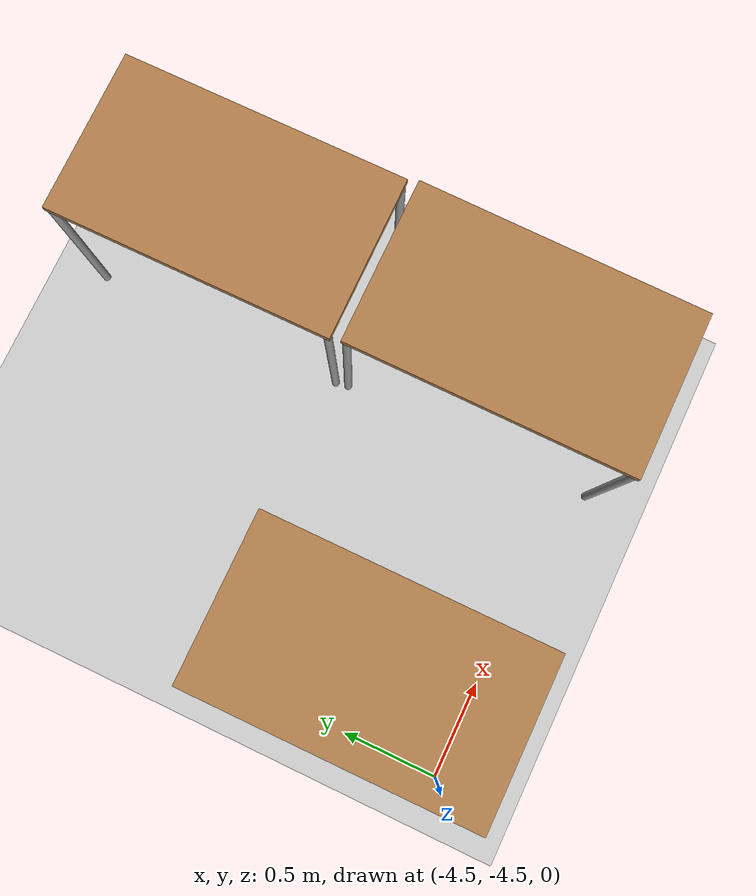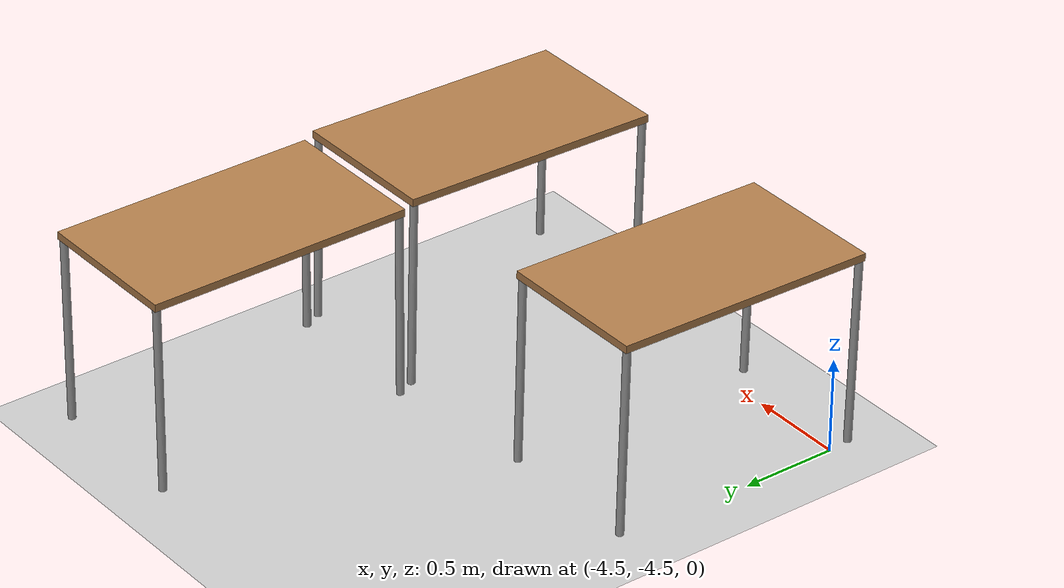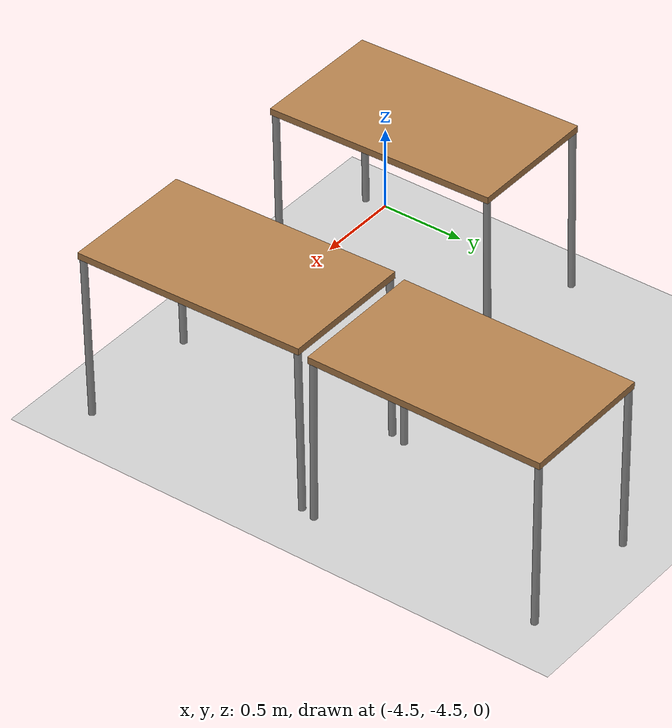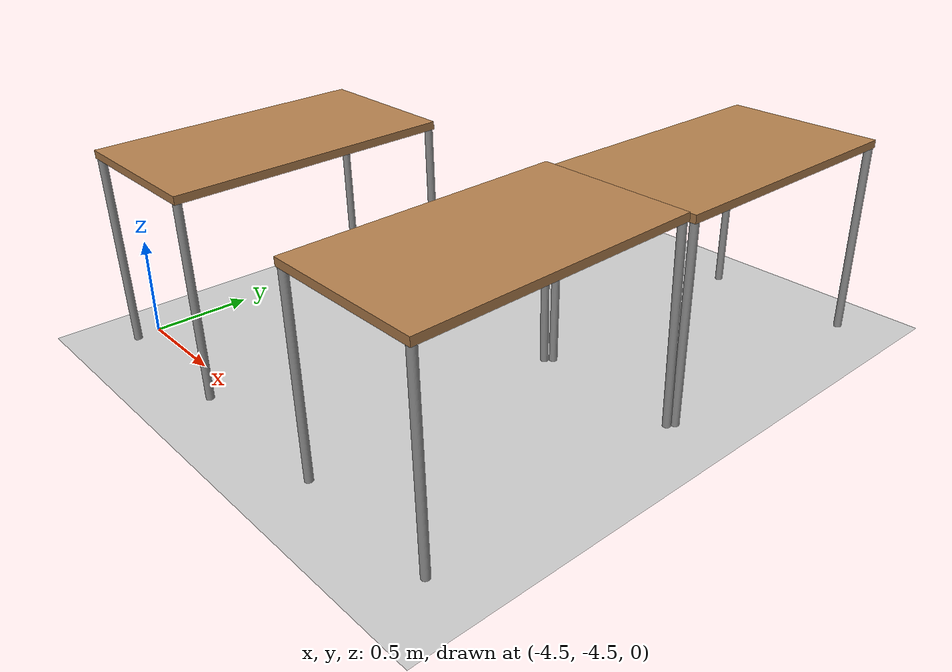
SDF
<sdf version="1.6">
 <world name="default">
  <model name="ground_plane">
   <static>1</static>
   <link name="link">
    <collision name="collision">
     <geometry><plane><normal>0 0 1</normal><size>100 100</size></plane></geometry>
     <surface><friction><ode><mu>100</mu><mu2>50</mu2></ode></friction></surface>
    </collision>
    <visual name="visual">
     <cast_shadows>0</cast_shadows>
     <geometry><plane><normal>0 0 1</normal><size>100 100</size></plane></geometry>
     <material>
      <script><uri>file://media/materials/scripts/gazebo.material</uri><name>Gazebo/Grey</name></script>
     </material>
    </visual>
   </link>
  </model>
  <model name="table_vert_0_clone_clone_clone_0">
   <link name="link">
    <pose>0 0 0 0 0 -1.56614</pose>
    <inertial>
     <inertia><ixx>1</ixx><ixy>0</ixy><ixz>0</ixz><iyy>1</iyy><iyz>0</iyz><izz>1</izz></inertia>
     <mass>1</mass>
    </inertial>
    <visual name="visual1">
     <pose>0 0 1 0 -0 0</pose>
     <geometry><box><size>1.4 0.8 0.04</size></box></geometry>
     <material>
      <script><uri>file://media/materials/scripts/gazebo.material</uri><name>Gazebo/Wood</name></script>
      <ambient>1 1 1 1</ambient>
      <diffuse>1 1 1 1</diffuse>
      <specular>0.2 0.2 0.2 1</specular>
      <emissive>0 0 0 1</emissive>
     </material>
    </visual>
    <visual name="front_left_leg">
     <pose>0.68 0.38 0.5 0 -0 0</pose>
     <geometry><cylinder><radius>0.02</radius><length>1</length></cylinder></geometry>
     <material>
      <script><uri>file://media/materials/scripts/gazebo.material</uri><name>Gazebo/Grey</name></script>
      <ambient>0.3 0.3 0.3 1</ambient>
      <diffuse>0.7 0.7 0.7 1</diffuse>
      <specular>0.01 0.01 0.01 1</specular>
      <emissive>0 0 0 1</emissive>
     </material>
    </visual>
    <visual name="front_right_leg">
     <pose>0.68 -0.38 0.5 0 -0 0</pose>
     <geometry><cylinder><radius>0.02</radius><length>1</length></cylinder></geometry>
     <material>
      <script><uri>file://media/materials/scripts/gazebo.material</uri><name>Gazebo/Grey</name></script>
      <ambient>0.3 0.3 0.3 1</ambient>
      <diffuse>0.7 0.7 0.7 1</diffuse>
      <specular>0.01 0.01 0.01 1</specular>
      <emissive>0 0 0 1</emissive>
     </material>
    </visual>
    <visual name="back_right_leg">
     <pose>-0.68 -0.38 0.5 0 -0 0</pose>
     <geometry><cylinder><radius>0.02</radius><length>1</length></cylinder></geometry>
     <material>
      <script><uri>file://media/materials/scripts/gazebo.material</uri><name>Gazebo/Grey</name></script>
      <ambient>0.3 0.3 0.3 1</ambient>
      <diffuse>0.7 0.7 0.7 1</diffuse>
      <specular>0.01 0.01 0.01 1</specular>
      <emissive>0 0 0 1</emissive>
     </material>
    </visual>
    <visual name="back_left_leg">
     <pose>-0.68 0.38 0.5 0 -0 0</pose>
     <geometry><cylinder><radius>0.02</radius><length>1</length></cylinder></geometry>
     <material>
      <script><uri>file://media/materials/scripts/gazebo.material</uri><name>Gazebo/Grey</name></script>
      <ambient>0.3 0.3 0.3 1</ambient>
      <diffuse>0.7 0.7 0.7 1</diffuse>
      <specular>0.01 0.01 0.01 1</specular>
      <emissive>0 0 0 1</emissive>
     </material>
    </visual>
    <collision name="surface">
     <pose>0 0 1 0 -0 0</pose>
     <geometry><box><size>1.5 0.8 0.03</size></box></geometry>
     <surface>
      <friction>
       <ode><mu>0.6</mu><mu2>0.6</mu2><fdir1>0 0 0</fdir1><slip1>0</slip1><slip2>0</slip2></ode>
       <torsional>
        <coefficient>1</coefficient>
        <patch_radius>0</patch_radius>
        <surface_radius>0</surface_radius>
        <use_patch_radius>1</use_patch_radius>
        <ode><slip>0</slip></ode>
       </torsional>
      </friction>
      <bounce><restitution_coefficient>0</restitution_coefficient><threshold>1e+06</threshold></bounce>
      <contact>
       <collide_without_contact>0</collide_without_contact>
       <collide_without_contact_bitmask>1</collide_without_contact_bitmask>
       <collide_bitmask>1</collide_bitmask>
       <ode>
        <soft_cfm>0</soft_cfm>
        <soft_erp>0.2</soft_erp>
        <kp>1e+13</kp>
        <kd>1</kd>
        <max_vel>0.01</max_vel>
        <min_depth>0</min_depth>
       </ode>
       <bullet>
        <split_impulse>1</split_impulse>
        <split_impulse_penetration_threshold>-0.01</split_impulse_penetration_threshold>
        <soft_cfm>0</soft_cfm>
        <soft_erp>0.2</soft_erp>
        <kp>1e+13</kp>
        <kd>1</kd>
       </bullet>
      </contact>
     </surface>
    </collision>
    <collision name="front_left_leg">
     <pose>0.68 0.38 0.5 0 -0 0</pose>
     <geometry><cylinder><radius>0.02</radius><length>1</length></cylinder></geometry>
     <surface>
      <friction>
       <ode><mu>1</mu><mu2>1</mu2><fdir1>0 0 0</fdir1><slip1>0</slip1><slip2>0</slip2></ode>
       <torsional>
        <coefficient>1</coefficient>
        <patch_radius>0</patch_radius>
        <surface_radius>0</surface_radius>
        <use_patch_radius>1</use_patch_radius>
        <ode><slip>0</slip></ode>
       </torsional>
      </friction>
      <bounce><restitution_coefficient>0</restitution_coefficient><threshold>1e+06</threshold></bounce>
      <contact>
       <collide_without_contact>0</collide_without_contact>
       <collide_without_contact_bitmask>1</collide_without_contact_bitmask>
       <collide_bitmask>1</collide_bitmask>
       <ode>
        <soft_cfm>0</soft_cfm>
        <soft_erp>0.2</soft_erp>
        <kp>1e+13</kp>
        <kd>1</kd>
        <max_vel>0.01</max_vel>
        <min_depth>0</min_depth>
       </ode>
       <bullet>
        <split_impulse>1</split_impulse>
        <split_impulse_penetration_threshold>-0.01</split_impulse_penetration_threshold>
        <soft_cfm>0</soft_cfm>
        <soft_erp>0.2</soft_erp>
        <kp>1e+13</kp>
        <kd>1</kd>
       </bullet>
      </contact>
     </surface>
    </collision>
    <collision name="front_right_leg">
     <pose>0.68 -0.38 0.5 0 -0 0</pose>
     <geometry><cylinder><radius>0.02</radius><length>1</length></cylinder></geometry>
     <surface>
      <friction>
       <ode><mu>1</mu><mu2>1</mu2><fdir1>0 0 0</fdir1><slip1>0</slip1><slip2>0</slip2></ode>
       <torsional>
        <coefficient>1</coefficient>
        <patch_radius>0</patch_radius>
        <surface_radius>0</surface_radius>
        <use_patch_radius>1</use_patch_radius>
        <ode><slip>0</slip></ode>
       </torsional>
      </friction>
      <bounce><restitution_coefficient>0</restitution_coefficient><threshold>1e+06</threshold></bounce>
      <contact>
       <collide_without_contact>0</collide_without_contact>
       <collide_without_contact_bitmask>1</collide_without_contact_bitmask>
       <collide_bitmask>1</collide_bitmask>
       <ode>
        <soft_cfm>0</soft_cfm>
        <soft_erp>0.2</soft_erp>
        <kp>1e+13</kp>
        <kd>1</kd>
        <max_vel>0.01</max_vel>
        <min_depth>0</min_depth>
       </ode>
       <bullet>
        <split_impulse>1</split_impulse>
        <split_impulse_penetration_threshold>-0.01</split_impulse_penetration_threshold>
        <soft_cfm>0</soft_cfm>
        <soft_erp>0.2</soft_erp>
        <kp>1e+13</kp>
        <kd>1</kd>
       </bullet>
      </contact>
     </surface>
    </collision>
    <collision name="back_right_leg">
     <pose>-0.68 -0.38 0.5 0 -0 0</pose>
     <geometry><cylinder><radius>0.02</radius><length>1</length></cylinder></geometry>
     <surface>
      <friction>
       <ode><mu>1</mu><mu2>1</mu2><fdir1>0 0 0</fdir1><slip1>0</slip1><slip2>0</slip2></ode>
       <torsional>
        <coefficient>1</coefficient>
        <patch_radius>0</patch_radius>
        <surface_radius>0</surface_radius>
        <use_patch_radius>1</use_patch_radius>
        <ode><slip>0</slip></ode>
       </torsional>
      </friction>
      <bounce><restitution_coefficient>0</restitution_coefficient><threshold>1e+06</threshold></bounce>
      <contact>
       <collide_without_contact>0</collide_without_contact>
       <collide_without_contact_bitmask>1</collide_without_contact_bitmask>
       <collide_bitmask>1</collide_bitmask>
       <ode>
        <soft_cfm>0</soft_cfm>
        <soft_erp>0.2</soft_erp>
        <kp>1e+13</kp>
        <kd>1</kd>
        <max_vel>0.01</max_vel>
        <min_depth>0</min_depth>
       </ode>
       <bullet>
        <split_impulse>1</split_impulse>
        <split_impulse_penetration_threshold>-0.01</split_impulse_penetration_threshold>
        <soft_cfm>0</soft_cfm>
        <soft_erp>0.2</soft_erp>
        <kp>1e+13</kp>
        <kd>1</kd>
       </bullet>
      </contact>
     </surface>
    </collision>
    <collision name="back_left_leg">
     <pose>-0.68 0.38 0.5 0 -0 0</pose>
     <geometry><cylinder><radius>0.02</radius><length>1</length></cylinder></geometry>
     <surface>
      <friction>
       <ode><mu>1</mu><mu2>1</mu2><fdir1>0 0 0</fdir1><slip1>0</slip1><slip2>0</slip2></ode>
       <torsional>
        <coefficient>1</coefficient>
        <patch_radius>0</patch_radius>
        <surface_radius>0</surface_radius>
        <use_patch_radius>1</use_patch_radius>
        <ode><slip>0</slip></ode>
       </torsional>
      </friction>
      <bounce><restitution_coefficient>0</restitution_coefficient><threshold>1e+06</threshold></bounce>
      <contact>
       <collide_without_contact>0</collide_without_contact>
       <collide_without_contact_bitmask>1</collide_without_contact_bitmask>
       <collide_bitmask>1</collide_bitmask>
       <ode>
        <soft_cfm>0</soft_cfm>
        <soft_erp>0.2</soft_erp>
        <kp>1e+13</kp>
        <kd>1</kd>
        <max_vel>0.01</max_vel>
        <min_depth>0</min_depth>
       </ode>
       <bullet>
        <split_impulse>1</split_impulse>
        <split_impulse_penetration_threshold>-0.01</split_impulse_penetration_threshold>
        <soft_cfm>0</soft_cfm>
        <soft_erp>0.2</soft_erp>
        <kp>1e+13</kp>
        <kd>1</kd>
       </bullet>
      </contact>
     </surface>
    </collision>
   </link>
   <static>0</static>
   <pose>-2.51933 -2.50991 -1e-05 1e-06 0 -0.004658</pose>
  </model>
  <model name="table_vert_0_clone_clone_clone_0_clone_0_clone">
   <link name="link">
    <pose>0 0 0 0 0 -1.56614</pose>
    <inertial>
     <inertia><ixx>1</ixx><ixy>0</ixy><ixz>0</ixz><iyy>1</iyy><iyz>0</iyz><izz>1</izz></inertia>
     <mass>1</mass>
    </inertial>
    <visual name="visual1">
     <pose>0 0 1 0 -0 0</pose>
     <geometry><box><size>1.4 0.8 0.04</size></box></geometry>
     <material>
      <script><uri>file://media/materials/scripts/gazebo.material</uri><name>Gazebo/Wood</name></script>
      <ambient>1 1 1 1</ambient>
      <diffuse>1 1 1 1</diffuse>
      <specular>0.2 0.2 0.2 1</specular>
      <emissive>0 0 0 1</emissive>
     </material>
    </visual>
    <visual name="front_left_leg">
     <pose>0.68 0.38 0.5 0 -0 0</pose>
     <geometry><cylinder><radius>0.02</radius><length>1</length></cylinder></geometry>
     <material>
      <script><uri>file://media/materials/scripts/gazebo.material</uri><name>Gazebo/Grey</name></script>
      <ambient>0.3 0.3 0.3 1</ambient>
      <diffuse>0.7 0.7 0.7 1</diffuse>
      <specular>0.01 0.01 0.01 1</specular>
      <emissive>0 0 0 1</emissive>
     </material>
    </visual>
    <visual name="front_right_leg">
     <pose>0.68 -0.38 0.5 0 -0 0</pose>
     <geometry><cylinder><radius>0.02</radius><length>1</length></cylinder></geometry>
     <material>
      <script><uri>file://media/materials/scripts/gazebo.material</uri><name>Gazebo/Grey</name></script>
      <ambient>0.3 0.3 0.3 1</ambient>
      <diffuse>0.7 0.7 0.7 1</diffuse>
      <specular>0.01 0.01 0.01 1</specular>
      <emissive>0 0 0 1</emissive>
     </material>
    </visual>
    <visual name="back_right_leg">
     <pose>-0.68 -0.38 0.5 0 -0 0</pose>
     <geometry><cylinder><radius>0.02</radius><length>1</length></cylinder></geometry>
     <material>
      <script><uri>file://media/materials/scripts/gazebo.material</uri><name>Gazebo/Grey</name></script>
      <ambient>0.3 0.3 0.3 1</ambient>
      <diffuse>0.7 0.7 0.7 1</diffuse>
      <specular>0.01 0.01 0.01 1</specular>
      <emissive>0 0 0 1</emissive>
     </material>
    </visual>
    <visual name="back_left_leg">
     <pose>-0.68 0.38 0.5 0 -0 0</pose>
     <geometry><cylinder><radius>0.02</radius><length>1</length></cylinder></geometry>
     <material>
      <script><uri>file://media/materials/scripts/gazebo.material</uri><name>Gazebo/Grey</name></script>
      <ambient>0.3 0.3 0.3 1</ambient>
      <diffuse>0.7 0.7 0.7 1</diffuse>
      <specular>0.01 0.01 0.01 1</specular>
      <emissive>0 0 0 1</emissive>
     </material>
    </visual>
    <collision name="surface">
     <pose>0 0 1 0 -0 0</pose>
     <geometry><box><size>1.5 0.8 0.03</size></box></geometry>
     <surface>
      <friction>
       <ode><mu>0.6</mu><mu2>0.6</mu2><fdir1>0 0 0</fdir1><slip1>0</slip1><slip2>0</slip2></ode>
       <torsional>
        <coefficient>1</coefficient>
        <patch_radius>0</patch_radius>
        <surface_radius>0</surface_radius>
        <use_patch_radius>1</use_patch_radius>
        <ode><slip>0</slip></ode>
       </torsional>
      </friction>
      <bounce><restitution_coefficient>0</restitution_coefficient><threshold>1e+06</threshold></bounce>
      <contact>
       <collide_without_contact>0</collide_without_contact>
       <collide_without_contact_bitmask>1</collide_without_contact_bitmask>
       <collide_bitmask>1</collide_bitmask>
       <ode>
        <soft_cfm>0</soft_cfm>
        <soft_erp>0.2</soft_erp>
        <kp>1e+13</kp>
        <kd>1</kd>
        <max_vel>0.01</max_vel>
        <min_depth>0</min_depth>
       </ode>
       <bullet>
        <split_impulse>1</split_impulse>
        <split_impulse_penetration_threshold>-0.01</split_impulse_penetration_threshold>
        <soft_cfm>0</soft_cfm>
        <soft_erp>0.2</soft_erp>
        <kp>1e+13</kp>
        <kd>1</kd>
       </bullet>
      </contact>
     </surface>
    </collision>
    <collision name="front_left_leg">
     <pose>0.68 0.38 0.5 0 -0 0</pose>
     <geometry><cylinder><radius>0.02</radius><length>1</length></cylinder></geometry>
     <surface>
      <friction>
       <ode><mu>1</mu><mu2>1</mu2><fdir1>0 0 0</fdir1><slip1>0</slip1><slip2>0</slip2></ode>
       <torsional>
        <coefficient>1</coefficient>
        <patch_radius>0</patch_radius>
        <surface_radius>0</surface_radius>
        <use_patch_radius>1</use_patch_radius>
        <ode><slip>0</slip></ode>
       </torsional>
      </friction>
      <bounce><restitution_coefficient>0</restitution_coefficient><threshold>1e+06</threshold></bounce>
      <contact>
       <collide_without_contact>0</collide_without_contact>
       <collide_without_contact_bitmask>1</collide_without_contact_bitmask>
       <collide_bitmask>1</collide_bitmask>
       <ode>
        <soft_cfm>0</soft_cfm>
        <soft_erp>0.2</soft_erp>
        <kp>1e+13</kp>
        <kd>1</kd>
        <max_vel>0.01</max_vel>
        <min_depth>0</min_depth>
       </ode>
       <bullet>
        <split_impulse>1</split_impulse>
        <split_impulse_penetration_threshold>-0.01</split_impulse_penetration_threshold>
        <soft_cfm>0</soft_cfm>
        <soft_erp>0.2</soft_erp>
        <kp>1e+13</kp>
        <kd>1</kd>
       </bullet>
      </contact>
     </surface>
    </collision>
    <collision name="front_right_leg">
     <pose>0.68 -0.38 0.5 0 -0 0</pose>
     <geometry><cylinder><radius>0.02</radius><length>1</length></cylinder></geometry>
     <surface>
      <friction>
       <ode><mu>1</mu><mu2>1</mu2><fdir1>0 0 0</fdir1><slip1>0</slip1><slip2>0</slip2></ode>
       <torsional>
        <coefficient>1</coefficient>
        <patch_radius>0</patch_radius>
        <surface_radius>0</surface_radius>
        <use_patch_radius>1</use_patch_radius>
        <ode><slip>0</slip></ode>
       </torsional>
      </friction>
      <bounce><restitution_coefficient>0</restitution_coefficient><threshold>1e+06</threshold></bounce>
      <contact>
       <collide_without_contact>0</collide_without_contact>
       <collide_without_contact_bitmask>1</collide_without_contact_bitmask>
       <collide_bitmask>1</collide_bitmask>
       <ode>
        <soft_cfm>0</soft_cfm>
        <soft_erp>0.2</soft_erp>
        <kp>1e+13</kp>
        <kd>1</kd>
        <max_vel>0.01</max_vel>
        <min_depth>0</min_depth>
       </ode>
       <bullet>
        <split_impulse>1</split_impulse>
        <split_impulse_penetration_threshold>-0.01</split_impulse_penetration_threshold>
        <soft_cfm>0</soft_cfm>
        <soft_erp>0.2</soft_erp>
        <kp>1e+13</kp>
        <kd>1</kd>
       </bullet>
      </contact>
     </surface>
    </collision>
    <collision name="back_right_leg">
     <pose>-0.68 -0.38 0.5 0 -0 0</pose>
     <geometry><cylinder><radius>0.02</radius><length>1</length></cylinder></geometry>
     <surface>
      <friction>
       <ode><mu>1</mu><mu2>1</mu2><fdir1>0 0 0</fdir1><slip1>0</slip1><slip2>0</slip2></ode>
       <torsional>
        <coefficient>1</coefficient>
        <patch_radius>0</patch_radius>
        <surface_radius>0</surface_radius>
        <use_patch_radius>1</use_patch_radius>
        <ode><slip>0</slip></ode>
       </torsional>
      </friction>
      <bounce><restitution_coefficient>0</restitution_coefficient><threshold>1e+06</threshold></bounce>
      <contact>
       <collide_without_contact>0</collide_without_contact>
       <collide_without_contact_bitmask>1</collide_without_contact_bitmask>
       <collide_bitmask>1</collide_bitmask>
       <ode>
        <soft_cfm>0</soft_cfm>
        <soft_erp>0.2</soft_erp>
        <kp>1e+13</kp>
        <kd>1</kd>
        <max_vel>0.01</max_vel>
        <min_depth>0</min_depth>
       </ode>
       <bullet>
        <split_impulse>1</split_impulse>
        <split_impulse_penetration_threshold>-0.01</split_impulse_penetration_threshold>
        <soft_cfm>0</soft_cfm>
        <soft_erp>0.2</soft_erp>
        <kp>1e+13</kp>
        <kd>1</kd>
       </bullet>
      </contact>
     </surface>
    </collision>
    <collision name="back_left_leg">
     <pose>-0.68 0.38 0.5 0 -0 0</pose>
     <geometry><cylinder><radius>0.02</radius><length>1</length></cylinder></geometry>
     <surface>
      <friction>
       <ode><mu>1</mu><mu2>1</mu2><fdir1>0 0 0</fdir1><slip1>0</slip1><slip2>0</slip2></ode>
       <torsional>
        <coefficient>1</coefficient>
        <patch_radius>0</patch_radius>
        <surface_radius>0</surface_radius>
        <use_patch_radius>1</use_patch_radius>
        <ode><slip>0</slip></ode>
       </torsional>
      </friction>
      <bounce><restitution_coefficient>0</restitution_coefficient><threshold>1e+06</threshold></bounce>
      <contact>
       <collide_without_contact>0</collide_without_contact>
       <collide_without_contact_bitmask>1</collide_without_contact_bitmask>
       <collide_bitmask>1</collide_bitmask>
       <ode>
        <soft_cfm>0</soft_cfm>
        <soft_erp>0.2</soft_erp>
        <kp>1e+13</kp>
        <kd>1</kd>
        <max_vel>0.01</max_vel>
        <min_depth>0</min_depth>
       </ode>
       <bullet>
        <split_impulse>1</split_impulse>
        <split_impulse_penetration_threshold>-0.01</split_impulse_penetration_threshold>
        <soft_cfm>0</soft_cfm>
        <soft_erp>0.2</soft_erp>
        <kp>1e+13</kp>
        <kd>1</kd>
       </bullet>
      </contact>
     </surface>
    </collision>
   </link>
   <static>0</static>
   <pose>-2.51287 -3.93914 0.015104 0.021576 9.5e-05 -0.004662</pose>
  </model>
  <model name="table_vert_0_clone_clone_clone_0_clone_0_clone_0">
   <link name="link">
    <pose>0 0 0 0 0 -1.56614</pose>
    <inertial>
     <inertia><ixx>1</ixx><ixy>0</ixy><ixz>0</ixz><iyy>1</iyy><iyz>0</iyz><izz>1</izz></inertia>
     <mass>1</mass>
    </inertial>
    <visual name="visual1">
     <pose>0 0 1 0 -0 0</pose>
     <geometry><box><size>1.4 0.8 0.04</size></box></geometry>
     <material>
      <script><uri>file://media/materials/scripts/gazebo.material</uri><name>Gazebo/Wood</name></script>
      <ambient>1 1 1 1</ambient>
      <diffuse>1 1 1 1</diffuse>
      <specular>0.2 0.2 0.2 1</specular>
      <emissive>0 0 0 1</emissive>
     </material>
    </visual>
    <visual name="front_left_leg">
     <pose>0.68 0.38 0.5 0 -0 0</pose>
     <geometry><cylinder><radius>0.02</radius><length>1</length></cylinder></geometry>
     <material>
      <script><uri>file://media/materials/scripts/gazebo.material</uri><name>Gazebo/Grey</name></script>
      <ambient>0.3 0.3 0.3 1</ambient>
      <diffuse>0.7 0.7 0.7 1</diffuse>
      <specular>0.01 0.01 0.01 1</specular>
      <emissive>0 0 0 1</emissive>
     </material>
    </visual>
    <visual name="front_right_leg">
     <pose>0.68 -0.38 0.5 0 -0 0</pose>
     <geometry><cylinder><radius>0.02</radius><length>1</length></cylinder></geometry>
     <material>
      <script><uri>file://media/materials/scripts/gazebo.material</uri><name>Gazebo/Grey</name></script>
      <ambient>0.3 0.3 0.3 1</ambient>
      <diffuse>0.7 0.7 0.7 1</diffuse>
      <specular>0.01 0.01 0.01 1</specular>
      <emissive>0 0 0 1</emissive>
     </material>
    </visual>
    <visual name="back_right_leg">
     <pose>-0.68 -0.38 0.5 0 -0 0</pose>
     <geometry><cylinder><radius>0.02</radius><length>1</length></cylinder></geometry>
     <material>
      <script><uri>file://media/materials/scripts/gazebo.material</uri><name>Gazebo/Grey</name></script>
      <ambient>0.3 0.3 0.3 1</ambient>
      <diffuse>0.7 0.7 0.7 1</diffuse>
      <specular>0.01 0.01 0.01 1</specular>
      <emissive>0 0 0 1</emissive>
     </material>
    </visual>
    <visual name="back_left_leg">
     <pose>-0.68 0.38 0.5 0 -0 0</pose>
     <geometry><cylinder><radius>0.02</radius><length>1</length></cylinder></geometry>
     <material>
      <script><uri>file://media/materials/scripts/gazebo.material</uri><name>Gazebo/Grey</name></script>
      <ambient>0.3 0.3 0.3 1</ambient>
      <diffuse>0.7 0.7 0.7 1</diffuse>
      <specular>0.01 0.01 0.01 1</specular>
      <emissive>0 0 0 1</emissive>
     </material>
    </visual>
    <collision name="surface">
     <pose>0 0 1 0 -0 0</pose>
     <geometry><box><size>1.5 0.8 0.03</size></box></geometry>
     <surface>
      <friction>
       <ode><mu>0.6</mu><mu2>0.6</mu2><fdir1>0 0 0</fdir1><slip1>0</slip1><slip2>0</slip2></ode>
       <torsional>
        <coefficient>1</coefficient>
        <patch_radius>0</patch_radius>
        <surface_radius>0</surface_radius>
        <use_patch_radius>1</use_patch_radius>
        <ode><slip>0</slip></ode>
       </torsional>
      </friction>
      <bounce><restitution_coefficient>0</restitution_coefficient><threshold>1e+06</threshold></bounce>
      <contact>
       <collide_without_contact>0</collide_without_contact>
       <collide_without_contact_bitmask>1</collide_without_contact_bitmask>
       <collide_bitmask>1</collide_bitmask>
       <ode>
        <soft_cfm>0</soft_cfm>
        <soft_erp>0.2</soft_erp>
        <kp>1e+13</kp>
        <kd>1</kd>
        <max_vel>0.01</max_vel>
        <min_depth>0</min_depth>
       </ode>
       <bullet>
        <split_impulse>1</split_impulse>
        <split_impulse_penetration_threshold>-0.01</split_impulse_penetration_threshold>
        <soft_cfm>0</soft_cfm>
        <soft_erp>0.2</soft_erp>
        <kp>1e+13</kp>
        <kd>1</kd>
       </bullet>
      </contact>
     </surface>
    </collision>
    <collision name="front_left_leg">
     <pose>0.68 0.38 0.5 0 -0 0</pose>
     <geometry><cylinder><radius>0.02</radius><length>1</length></cylinder></geometry>
     <surface>
      <friction>
       <ode><mu>1</mu><mu2>1</mu2><fdir1>0 0 0</fdir1><slip1>0</slip1><slip2>0</slip2></ode>
       <torsional>
        <coefficient>1</coefficient>
        <patch_radius>0</patch_radius>
        <surface_radius>0</surface_radius>
        <use_patch_radius>1</use_patch_radius>
        <ode><slip>0</slip></ode>
       </torsional>
      </friction>
      <bounce><restitution_coefficient>0</restitution_coefficient><threshold>1e+06</threshold></bounce>
      <contact>
       <collide_without_contact>0</collide_without_contact>
       <collide_without_contact_bitmask>1</collide_without_contact_bitmask>
       <collide_bitmask>1</collide_bitmask>
       <ode>
        <soft_cfm>0</soft_cfm>
        <soft_erp>0.2</soft_erp>
        <kp>1e+13</kp>
        <kd>1</kd>
        <max_vel>0.01</max_vel>
        <min_depth>0</min_depth>
       </ode>
       <bullet>
        <split_impulse>1</split_impulse>
        <split_impulse_penetration_threshold>-0.01</split_impulse_penetration_threshold>
        <soft_cfm>0</soft_cfm>
        <soft_erp>0.2</soft_erp>
        <kp>1e+13</kp>
        <kd>1</kd>
       </bullet>
      </contact>
     </surface>
    </collision>
    <collision name="front_right_leg">
     <pose>0.68 -0.38 0.5 0 -0 0</pose>
     <geometry><cylinder><radius>0.02</radius><length>1</length></cylinder></geometry>
     <surface>
      <friction>
       <ode><mu>1</mu><mu2>1</mu2><fdir1>0 0 0</fdir1><slip1>0</slip1><slip2>0</slip2></ode>
       <torsional>
        <coefficient>1</coefficient>
        <patch_radius>0</patch_radius>
        <surface_radius>0</surface_radius>
        <use_patch_radius>1</use_patch_radius>
        <ode><slip>0</slip></ode>
       </torsional>
      </friction>
      <bounce><restitution_coefficient>0</restitution_coefficient><threshold>1e+06</threshold></bounce>
      <contact>
       <collide_without_contact>0</collide_without_contact>
       <collide_without_contact_bitmask>1</collide_without_contact_bitmask>
       <collide_bitmask>1</collide_bitmask>
       <ode>
        <soft_cfm>0</soft_cfm>
        <soft_erp>0.2</soft_erp>
        <kp>1e+13</kp>
        <kd>1</kd>
        <max_vel>0.01</max_vel>
        <min_depth>0</min_depth>
       </ode>
       <bullet>
        <split_impulse>1</split_impulse>
        <split_impulse_penetration_threshold>-0.01</split_impulse_penetration_threshold>
        <soft_cfm>0</soft_cfm>
        <soft_erp>0.2</soft_erp>
        <kp>1e+13</kp>
        <kd>1</kd>
       </bullet>
      </contact>
     </surface>
    </collision>
    <collision name="back_right_leg">
     <pose>-0.68 -0.38 0.5 0 -0 0</pose>
     <geometry><cylinder><radius>0.02</radius><length>1</length></cylinder></geometry>
     <surface>
      <friction>
       <ode><mu>1</mu><mu2>1</mu2><fdir1>0 0 0</fdir1><slip1>0</slip1><slip2>0</slip2></ode>
       <torsional>
        <coefficient>1</coefficient>
        <patch_radius>0</patch_radius>
        <surface_radius>0</surface_radius>
        <use_patch_radius>1</use_patch_radius>
        <ode><slip>0</slip></ode>
       </torsional>
      </friction>
      <bounce><restitution_coefficient>0</restitution_coefficient><threshold>1e+06</threshold></bounce>
      <contact>
       <collide_without_contact>0</collide_without_contact>
       <collide_without_contact_bitmask>1</collide_without_contact_bitmask>
       <collide_bitmask>1</collide_bitmask>
       <ode>
        <soft_cfm>0</soft_cfm>
        <soft_erp>0.2</soft_erp>
        <kp>1e+13</kp>
        <kd>1</kd>
        <max_vel>0.01</max_vel>
        <min_depth>0</min_depth>
       </ode>
       <bullet>
        <split_impulse>1</split_impulse>
        <split_impulse_penetration_threshold>-0.01</split_impulse_penetration_threshold>
        <soft_cfm>0</soft_cfm>
        <soft_erp>0.2</soft_erp>
        <kp>1e+13</kp>
        <kd>1</kd>
       </bullet>
      </contact>
     </surface>
    </collision>
    <collision name="back_left_leg">
     <pose>-0.68 0.38 0.5 0 -0 0</pose>
     <geometry><cylinder><radius>0.02</radius><length>1</length></cylinder></geometry>
     <surface>
      <friction>
       <ode><mu>1</mu><mu2>1</mu2><fdir1>0 0 0</fdir1><slip1>0</slip1><slip2>0</slip2></ode>
       <torsional>
        <coefficient>1</coefficient>
        <patch_radius>0</patch_radius>
        <surface_radius>0</surface_radius>
        <use_patch_radius>1</use_patch_radius>
        <ode><slip>0</slip></ode>
       </torsional>
      </friction>
      <bounce><restitution_coefficient>0</restitution_coefficient><threshold>1e+06</threshold></bounce>
      <contact>
       <collide_without_contact>0</collide_without_contact>
       <collide_without_contact_bitmask>1</collide_without_contact_bitmask>
       <collide_bitmask>1</collide_bitmask>
       <ode>
        <soft_cfm>0</soft_cfm>
        <soft_erp>0.2</soft_erp>
        <kp>1e+13</kp>
        <kd>1</kd>
        <max_vel>0.01</max_vel>
        <min_depth>0</min_depth>
       </ode>
       <bullet>
        <split_impulse>1</split_impulse>
        <split_impulse_penetration_threshold>-0.01</split_impulse_penetration_threshold>
        <soft_cfm>0</soft_cfm>
        <soft_erp>0.2</soft_erp>
        <kp>1e+13</kp>
        <kd>1</kd>
       </bullet>
      </contact>
     </surface>
    </collision>
   </link>
   <static>0</static>
   <pose>-4.10424 -3.93913 0.015104 0.021578 0.0001 -0.004658</pose>
  </model>
 </world>
</sdf>
